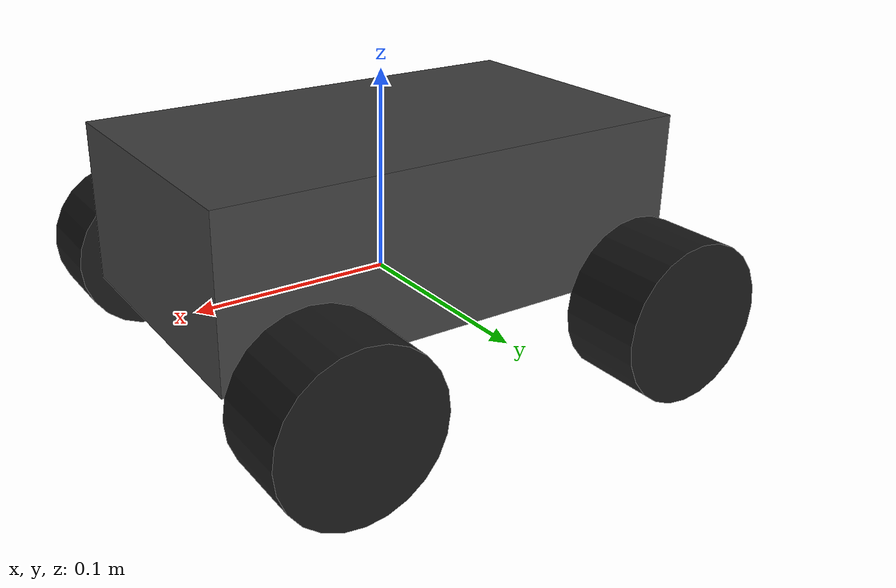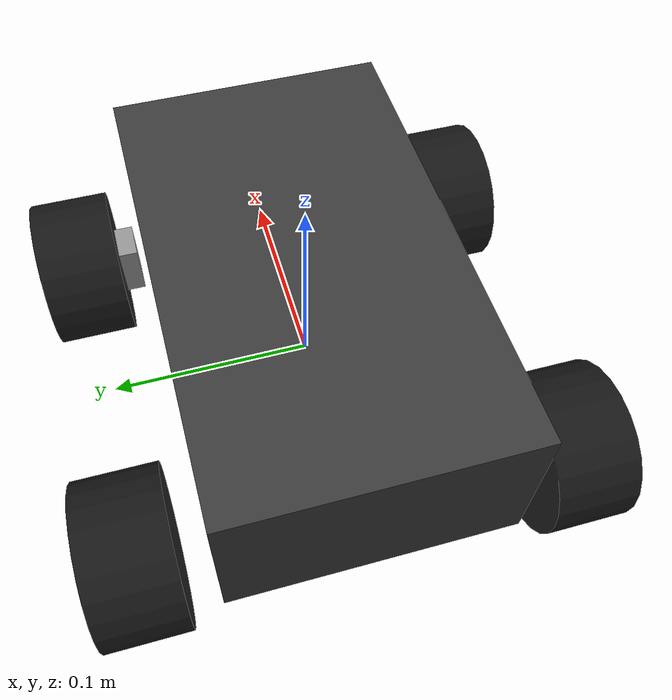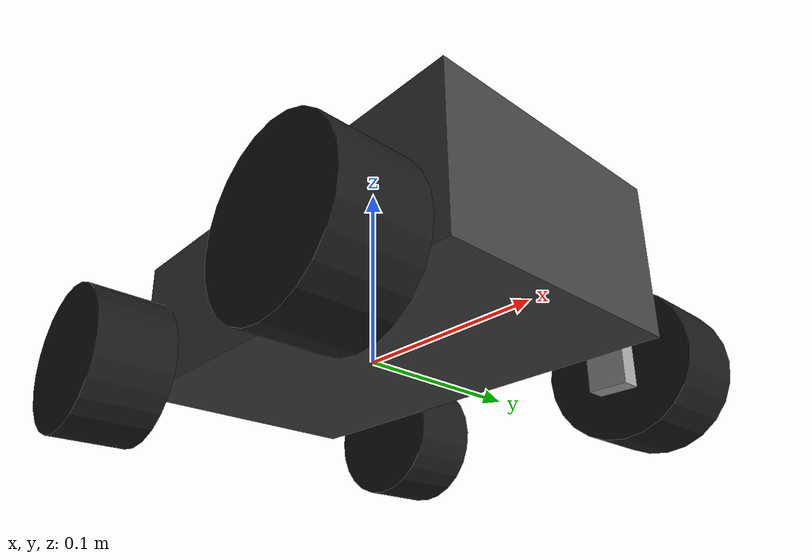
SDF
<sdf version='1.11'>
  <model name='hbx16889_rover'>
    <link name='base_link'>
      <inertial>
        <pose>0 0 0.035934664246823962 0 0 0</pose>
        <mass>0.55100000000000005</mass>
        <inertia>
          <ixx>0.0013072936479128861</ixx>
          <ixy>0</ixy>
          <ixz>0</ixz>
          <iyy>0.0031372936479128859</iyy>
          <iyz>0</iyz>
          <izz>0.003741</izz>
        </inertia>
      </inertial>
      <collision name='base_link_fixed_joint_lump__chassis_collision'>
        <pose>0 0 0.035999999999999997 0 0 0</pose>
        <geometry>
          <box>
            <size>0.23999999999999999 0.14000000000000001 0.080000000000000002</size>
          </box>
        </geometry>
        <surface>
          <contact>
            <ode/>
          </contact>
          <friction>
            <ode>
              <mu>0.10000000000000001</mu>
              <mu2>0.10000000000000001</mu2>
            </ode>
          </friction>
        </surface>
      </collision>
      <visual name='base_link_visual'>
        <pose>0 0 0 0 0 0</pose>
        <geometry>
          <box>
            <size>0.001 0.001 0.001</size>
          </box>
        </geometry>
      </visual>
      <visual name='base_link_fixed_joint_lump__chassis_visual_1'>
        <pose>0 0 0.035999999999999997 0 0 0</pose>
        <geometry>
          <box>
            <size>0.23999999999999999 0.14000000000000001 0.080000000000000002</size>
          </box>
        </geometry>
        <material>
          <diffuse>0.25 0.25 0.25 1</diffuse>
          <ambient>0.25 0.25 0.25 1</ambient>
        </material>
      </visual>

      <sensor name="air_pressure_sensor" type="air_pressure">
        <always_on>1</always_on>
        <update_rate>50</update_rate>
        <air_pressure>
          <pressure>
            <noise type="gaussian">
              <mean>0</mean>
              <stddev>3</stddev>
            </noise>
          </pressure>
        </air_pressure>
      </sensor>
      <sensor name="magnetometer_sensor" type="magnetometer">
        <always_on>1</always_on>
        <update_rate>100</update_rate>
        <magnetometer>
          <x><noise type="gaussian"><stddev>0.0001</stddev></noise></x>
          <y><noise type="gaussian"><stddev>0.0001</stddev></noise></y>
          <z><noise type="gaussian"><stddev>0.0001</stddev></noise></z>
        </magnetometer>
      </sensor>
      <sensor name="imu_sensor" type="imu">
        <always_on>1</always_on>
        <update_rate>250</update_rate>
        <imu>
          <angular_velocity>
            <x><noise type="gaussian"><mean>0.0</mean><stddev>0.0008726646</stddev></noise></x>
            <y><noise type="gaussian"><mean>0.0</mean><stddev>0.0008726646</stddev></noise></y>
            <z><noise type="gaussian"><mean>0.0</mean><stddev>0.0008726646</stddev></noise></z>
          </angular_velocity>
          <linear_acceleration>
            <x><noise type="gaussian"><mean>0.0</mean><stddev>0.00637</stddev></noise></x>
            <y><noise type="gaussian"><mean>0.0</mean><stddev>0.00637</stddev></noise></y>
            <z><noise type="gaussian"><mean>0.0</mean><stddev>0.00686</stddev></noise></z>
          </linear_acceleration>
        </imu>
      </sensor>
      <sensor name="navsat_sensor" type="navsat">
        <always_on>1</always_on>
        <update_rate>30</update_rate>
      </sensor>
    </link>
    <joint name='front_left_susp_joint' type='prismatic'>
      <pose relative_to='base_link'>0.087499999999999994 0.085000000000000006 -0.0040000000000000044 0 0 0</pose>
      <parent>base_link</parent>
      <child>front_left_susp_link</child>
      <axis>
        <xyz>0 0 1</xyz>
        <limit>
          <lower>-0.01</lower>
          <upper>0.01</upper>
          <effort>100</effort>
          <velocity>0.5</velocity>
        </limit>
        <dynamics>
          <damping>50</damping>
          <friction>0</friction>
          <spring_reference>0</spring_reference>
          <spring_stiffness>800</spring_stiffness>
        </dynamics>
      </axis>
      <physics>
        <ode>
          <implicit_spring_damper>true</implicit_spring_damper>
          <cfm_damping>true</cfm_damping>
          <limit>
            <cfm>0</cfm>
            <erp>0.20000000000000001</erp>
          </limit>
        </ode>
      </physics>
    </joint>
    <link name='front_left_susp_link'>
      <pose relative_to='front_left_susp_joint'>0 0 0 0 0 0</pose>
      <inertial>
        <pose>0 0 0 0 0 0</pose>
        <mass>0.01</mass>
        <inertia>
          <ixx>9.9999999999999995e-07</ixx>
          <ixy>0</ixy>
          <ixz>0</ixz>
          <iyy>9.9999999999999995e-07</iyy>
          <iyz>0</iyz>
          <izz>9.9999999999999995e-07</izz>
        </inertia>
      </inertial>
    </link>
    <joint name='front_left_steer_joint' type='revolute'>
      <pose relative_to='front_left_susp_link'>0 0 0 0 0 0</pose>
      <parent>front_left_susp_link</parent>
      <child>front_left_steer_link</child>
      <axis>
        <xyz>0 0 1</xyz>
        <limit>
          <lower>-0.52400000000000002</lower>
          <upper>0.52400000000000002</upper>
          <effort>10</effort>
          <velocity>2</velocity>
        </limit>
        <dynamics>
          <damping>1</damping>
          <friction>0.10000000000000001</friction>
          <spring_reference>0</spring_reference>
          <spring_stiffness>0</spring_stiffness>
        </dynamics>
      </axis>
    </joint>
    <link name='front_left_steer_link'>
      <pose relative_to='front_left_steer_joint'>0 0 0 0 0 0</pose>
      <inertial>
        <pose>0 0 0 0 0 0</pose>
        <mass>0.014999999999999999</mass>
        <inertia>
          <ixx>9.9999999999999995e-07</ixx>
          <ixy>0</ixy>
          <ixz>0</ixz>
          <iyy>9.9999999999999995e-07</iyy>
          <iyz>0</iyz>
          <izz>9.9999999999999995e-07</izz>
        </inertia>
      </inertial>
      <visual name='front_left_steer_link_visual'>
        <pose>0 0 0 0 0 0</pose>
        <geometry>
          <box>
            <size>0.02 0.02 0.029999999999999999</size>
          </box>
        </geometry>
        <material>
          <diffuse>0.625 0.625 0.625 1</diffuse>
          <ambient>0.625 0.625 0.625 1</ambient>
        </material>
      </visual>
    </link>
    <joint name='front_left_wheel_joint' type='revolute'>
      <pose relative_to='front_left_steer_link'>0 0.020500000000000001 0 0 0 0</pose>
      <parent>front_left_steer_link</parent>
      <child>front_left_wheel</child>
      <axis>
        <xyz>0 1 0</xyz>
        <limit>
          <lower>-inf</lower>
          <upper>inf</upper>
        </limit>
        <dynamics>
          <damping>0.01</damping>
          <friction>0.050000000000000003</friction>
          <spring_reference>0</spring_reference>
          <spring_stiffness>0</spring_stiffness>
        </dynamics>
      </axis>
    </joint>
    <link name='front_left_wheel'>
      <pose relative_to='front_left_wheel_joint'>0 0 0 0 0 0</pose>
      <inertial>
        <pose>0 0 0 0 0 0</pose>
        <mass>0.059999999999999998</mass>
        <inertia>
          <ixx>3.1199999999999999e-05</ixx>
          <ixy>0</ixy>
          <ixz>0</ixz>
          <iyy>3.1199999999999999e-05</iyy>
          <iyz>0</iyz>
          <izz>4.5599999999999997e-05</izz>
        </inertia>
      </inertial>
      <collision name='front_left_wheel_collision'>
        <pose>0 0 0 1.5708 0 0</pose>
        <geometry>
          <cylinder>
            <length>0.041000000000000002</length>
            <radius>0.039</radius>
          </cylinder>
        </geometry>
        <surface>
          <contact>
            <ode>
              <kp>1000000</kp>
              <kd>100</kd>
              <min_depth>0.001</min_depth>
            </ode>
          </contact>
          <friction>
            <ode>
              <mu>1.5</mu>
              <mu2>1.2</mu2>
            </ode>
          </friction>
        </surface>
      </collision>
      <visual name='front_left_wheel_visual'>
        <pose>0 0 0 1.5708 0 0</pose>
        <geometry>
          <cylinder>
            <length>0.041000000000000002</length>
            <radius>0.039</radius>
          </cylinder>
        </geometry>
        <material>
          <diffuse>0.099999994 0.099999994 0.099999994 1</diffuse>
          <ambient>0.099999994 0.099999994 0.099999994 1</ambient>
        </material>
      </visual>
    </link>
    <joint name='front_right_susp_joint' type='prismatic'>
      <pose relative_to='base_link'>0.087499999999999994 -0.085000000000000006 -0.0040000000000000044 0 0 0</pose>
      <parent>base_link</parent>
      <child>front_right_susp_link</child>
      <axis>
        <xyz>0 0 1</xyz>
        <limit>
          <lower>-0.01</lower>
          <upper>0.01</upper>
          <effort>100</effort>
          <velocity>0.5</velocity>
        </limit>
        <dynamics>
          <damping>50</damping>
          <friction>0</friction>
          <spring_reference>0</spring_reference>
          <spring_stiffness>800</spring_stiffness>
        </dynamics>
      </axis>
      <physics>
        <ode>
          <implicit_spring_damper>true</implicit_spring_damper>
          <cfm_damping>true</cfm_damping>
          <limit>
            <cfm>0</cfm>
            <erp>0.20000000000000001</erp>
          </limit>
        </ode>
      </physics>
    </joint>
    <link name='front_right_susp_link'>
      <pose relative_to='front_right_susp_joint'>0 0 0 0 0 0</pose>
      <inertial>
        <pose>0 0 0 0 0 0</pose>
        <mass>0.01</mass>
        <inertia>
          <ixx>9.9999999999999995e-07</ixx>
          <ixy>0</ixy>
          <ixz>0</ixz>
          <iyy>9.9999999999999995e-07</iyy>
          <iyz>0</iyz>
          <izz>9.9999999999999995e-07</izz>
        </inertia>
      </inertial>
    </link>
    <joint name='front_right_steer_joint' type='revolute'>
      <pose relative_to='front_right_susp_link'>0 0 0 0 0 0</pose>
      <parent>front_right_susp_link</parent>
      <child>front_right_steer_link</child>
      <axis>
        <xyz>0 0 1</xyz>
        <limit>
          <lower>-0.52400000000000002</lower>
          <upper>0.52400000000000002</upper>
          <effort>10</effort>
          <velocity>2</velocity>
        </limit>
        <dynamics>
          <damping>1</damping>
          <friction>0.10000000000000001</friction>
          <spring_reference>0</spring_reference>
          <spring_stiffness>0</spring_stiffness>
        </dynamics>
      </axis>
    </joint>
    <link name='front_right_steer_link'>
      <pose relative_to='front_right_steer_joint'>0 0 0 0 0 0</pose>
      <inertial>
        <pose>0 0 0 0 0 0</pose>
        <mass>0.014999999999999999</mass>
        <inertia>
          <ixx>9.9999999999999995e-07</ixx>
          <ixy>0</ixy>
          <ixz>0</ixz>
          <iyy>9.9999999999999995e-07</iyy>
          <iyz>0</iyz>
          <izz>9.9999999999999995e-07</izz>
        </inertia>
      </inertial>
      <visual name='front_right_steer_link_visual'>
        <pose>0 0 0 0 0 0</pose>
        <geometry>
          <box>
            <size>0.02 0.02 0.029999999999999999</size>
          </box>
        </geometry>
        <material>
          <diffuse>0.625 0.625 0.625 1</diffuse>
          <ambient>0.625 0.625 0.625 1</ambient>
        </material>
      </visual>
    </link>
    <joint name='front_right_wheel_joint' type='revolute'>
      <pose relative_to='front_right_steer_link'>0 -0.020500000000000001 0 0 0 0</pose>
      <parent>front_right_steer_link</parent>
      <child>front_right_wheel</child>
      <axis>
        <xyz>0 1 0</xyz>
        <limit>
          <lower>-inf</lower>
          <upper>inf</upper>
        </limit>
        <dynamics>
          <damping>0.01</damping>
          <friction>0.050000000000000003</friction>
          <spring_reference>0</spring_reference>
          <spring_stiffness>0</spring_stiffness>
        </dynamics>
      </axis>
    </joint>
    <link name='front_right_wheel'>
      <pose relative_to='front_right_wheel_joint'>0 0 0 0 0 0</pose>
      <inertial>
        <pose>0 0 0 0 0 0</pose>
        <mass>0.059999999999999998</mass>
        <inertia>
          <ixx>3.1199999999999999e-05</ixx>
          <ixy>0</ixy>
          <ixz>0</ixz>
          <iyy>3.1199999999999999e-05</iyy>
          <iyz>0</iyz>
          <izz>4.5599999999999997e-05</izz>
        </inertia>
      </inertial>
      <collision name='front_right_wheel_collision'>
        <pose>0 0 0 1.5708 0 0</pose>
        <geometry>
          <cylinder>
            <length>0.041000000000000002</length>
            <radius>0.039</radius>
          </cylinder>
        </geometry>
        <surface>
          <contact>
            <ode>
              <kp>1000000</kp>
              <kd>100</kd>
              <min_depth>0.001</min_depth>
            </ode>
          </contact>
          <friction>
            <ode>
              <mu>1.5</mu>
              <mu2>1.2</mu2>
            </ode>
          </friction>
        </surface>
      </collision>
      <visual name='front_right_wheel_visual'>
        <pose>0 0 0 1.5708 0 0</pose>
        <geometry>
          <cylinder>
            <length>0.041000000000000002</length>
            <radius>0.039</radius>
          </cylinder>
        </geometry>
        <material>
          <diffuse>0.099999994 0.099999994 0.099999994 1</diffuse>
          <ambient>0.099999994 0.099999994 0.099999994 1</ambient>
        </material>
      </visual>
    </link>
    <joint name='rear_left_susp_joint' type='prismatic'>
      <pose relative_to='base_link'>-0.087499999999999994 0.085000000000000006 -0.0040000000000000044 0 0 0</pose>
      <parent>base_link</parent>
      <child>rear_left_susp_link</child>
      <axis>
        <xyz>0 0 1</xyz>
        <limit>
          <lower>-0.01</lower>
          <upper>0.01</upper>
          <effort>100</effort>
          <velocity>0.5</velocity>
        </limit>
        <dynamics>
          <damping>50</damping>
          <friction>0</friction>
          <spring_reference>0</spring_reference>
          <spring_stiffness>800</spring_stiffness>
        </dynamics>
      </axis>
      <physics>
        <ode>
          <implicit_spring_damper>true</implicit_spring_damper>
          <cfm_damping>true</cfm_damping>
          <limit>
            <cfm>0</cfm>
            <erp>0.20000000000000001</erp>
          </limit>
        </ode>
      </physics>
    </joint>
    <link name='rear_left_susp_link'>
      <pose relative_to='rear_left_susp_joint'>0 0 0 0 0 0</pose>
      <inertial>
        <pose>0 0 0 0 0 0</pose>
        <mass>0.01</mass>
        <inertia>
          <ixx>9.9999999999999995e-07</ixx>
          <ixy>0</ixy>
          <ixz>0</ixz>
          <iyy>9.9999999999999995e-07</iyy>
          <iyz>0</iyz>
          <izz>9.9999999999999995e-07</izz>
        </inertia>
      </inertial>
    </link>
    <joint name='rear_left_wheel_joint' type='revolute'>
      <pose relative_to='rear_left_susp_link'>0 0.020500000000000001 0 0 0 0</pose>
      <parent>rear_left_susp_link</parent>
      <child>rear_left_wheel</child>
      <axis>
        <xyz>0 1 0</xyz>
        <limit>
          <lower>-inf</lower>
          <upper>inf</upper>
        </limit>
        <dynamics>
          <damping>0.01</damping>
          <friction>0.050000000000000003</friction>
          <spring_reference>0</spring_reference>
          <spring_stiffness>0</spring_stiffness>
        </dynamics>
      </axis>
    </joint>
    <link name='rear_left_wheel'>
      <pose relative_to='rear_left_wheel_joint'>0 0 0 0 0 0</pose>
      <inertial>
        <pose>0 0 0 0 0 0</pose>
        <mass>0.059999999999999998</mass>
        <inertia>
          <ixx>3.1199999999999999e-05</ixx>
          <ixy>0</ixy>
          <ixz>0</ixz>
          <iyy>3.1199999999999999e-05</iyy>
          <iyz>0</iyz>
          <izz>4.5599999999999997e-05</izz>
        </inertia>
      </inertial>
      <collision name='rear_left_wheel_collision'>
        <pose>0 0 0 1.5708 0 0</pose>
        <geometry>
          <cylinder>
            <length>0.041000000000000002</length>
            <radius>0.039</radius>
          </cylinder>
        </geometry>
        <surface>
          <contact>
            <ode>
              <kp>1000000</kp>
              <kd>100</kd>
              <min_depth>0.001</min_depth>
            </ode>
          </contact>
          <friction>
            <ode>
              <mu>1.5</mu>
              <mu2>1.2</mu2>
            </ode>
          </friction>
        </surface>
      </collision>
      <visual name='rear_left_wheel_visual'>
        <pose>0 0 0 1.5708 0 0</pose>
        <geometry>
          <cylinder>
            <length>0.041000000000000002</length>
            <radius>0.039</radius>
          </cylinder>
        </geometry>
        <material>
          <diffuse>0.099999994 0.099999994 0.099999994 1</diffuse>
          <ambient>0.099999994 0.099999994 0.099999994 1</ambient>
        </material>
      </visual>
    </link>
    <joint name='rear_right_susp_joint' type='prismatic'>
      <pose relative_to='base_link'>-0.087499999999999994 -0.085000000000000006 -0.0040000000000000044 0 0 0</pose>
      <parent>base_link</parent>
      <child>rear_right_susp_link</child>
      <axis>
        <xyz>0 0 1</xyz>
        <limit>
          <lower>-0.01</lower>
          <upper>0.01</upper>
          <effort>100</effort>
          <velocity>0.5</velocity>
        </limit>
        <dynamics>
          <damping>50</damping>
          <friction>0</friction>
          <spring_reference>0</spring_reference>
          <spring_stiffness>800</spring_stiffness>
        </dynamics>
      </axis>
      <physics>
        <ode>
          <implicit_spring_damper>true</implicit_spring_damper>
          <cfm_damping>true</cfm_damping>
          <limit>
            <cfm>0</cfm>
            <erp>0.20000000000000001</erp>
          </limit>
        </ode>
      </physics>
    </joint>
    <link name='rear_right_susp_link'>
      <pose relative_to='rear_right_susp_joint'>0 0 0 0 0 0</pose>
      <inertial>
        <pose>0 0 0 0 0 0</pose>
        <mass>0.01</mass>
        <inertia>
          <ixx>9.9999999999999995e-07</ixx>
          <ixy>0</ixy>
          <ixz>0</ixz>
          <iyy>9.9999999999999995e-07</iyy>
          <iyz>0</iyz>
          <izz>9.9999999999999995e-07</izz>
        </inertia>
      </inertial>
    </link>
    <joint name='rear_right_wheel_joint' type='revolute'>
      <pose relative_to='rear_right_susp_link'>0 -0.020500000000000001 0 0 0 0</pose>
      <parent>rear_right_susp_link</parent>
      <child>rear_right_wheel</child>
      <axis>
        <xyz>0 1 0</xyz>
        <limit>
          <lower>-inf</lower>
          <upper>inf</upper>
        </limit>
        <dynamics>
          <damping>0.01</damping>
          <friction>0.050000000000000003</friction>
          <spring_reference>0</spring_reference>
          <spring_stiffness>0</spring_stiffness>
        </dynamics>
      </axis>
    </joint>
    <link name='rear_right_wheel'>
      <pose relative_to='rear_right_wheel_joint'>0 0 0 0 0 0</pose>
      <inertial>
        <pose>0 0 0 0 0 0</pose>
        <mass>0.059999999999999998</mass>
        <inertia>
          <ixx>3.1199999999999999e-05</ixx>
          <ixy>0</ixy>
          <ixz>0</ixz>
          <iyy>3.1199999999999999e-05</iyy>
          <iyz>0</iyz>
          <izz>4.5599999999999997e-05</izz>
        </inertia>
      </inertial>
      <collision name='rear_right_wheel_collision'>
        <pose>0 0 0 1.5708 0 0</pose>
        <geometry>
          <cylinder>
            <length>0.041000000000000002</length>
            <radius>0.039</radius>
          </cylinder>
        </geometry>
        <surface>
          <contact>
            <ode>
              <kp>1000000</kp>
              <kd>100</kd>
              <min_depth>0.001</min_depth>
            </ode>
          </contact>
          <friction>
            <ode>
              <mu>1.5</mu>
              <mu2>1.2</mu2>
            </ode>
          </friction>
        </surface>
      </collision>
      <visual name='rear_right_wheel_visual'>
        <pose>0 0 0 1.5708 0 0</pose>
        <geometry>
          <cylinder>
            <length>0.041000000000000002</length>
            <radius>0.039</radius>
          </cylinder>
        </geometry>
        <material>
          <diffuse>0.099999994 0.099999994 0.099999994 1</diffuse>
          <ambient>0.099999994 0.099999994 0.099999994 1</ambient>
        </material>
      </visual>
    </link>

    <plugin filename="gz-sim-joint-controller-system" name="gz::sim::systems::JointController">
      <joint_name>rear_left_wheel_joint</joint_name>
      <sub_topic>command/motor_speed</sub_topic>
      <control_type>velocity</control_type>
      <use_actuator_msg>true</use_actuator_msg>
      <actuator_number>0</actuator_number>
    </plugin>

    <plugin filename="gz-sim-joint-controller-system" name="gz::sim::systems::JointController">
      <joint_name>rear_right_wheel_joint</joint_name>
      <sub_topic>command/motor_speed</sub_topic>
      <control_type>velocity</control_type>
      <use_actuator_msg>true</use_actuator_msg>
      <actuator_number>0</actuator_number>
    </plugin>

    <plugin filename="gz-sim-joint-controller-system" name="gz::sim::systems::JointController">
      <joint_name>front_left_wheel_joint</joint_name>
      <sub_topic>command/motor_speed</sub_topic>
      <control_type>velocity</control_type>
      <use_actuator_msg>true</use_actuator_msg>
      <actuator_number>0</actuator_number>
    </plugin>

    <plugin filename="gz-sim-joint-controller-system" name="gz::sim::systems::JointController">
      <joint_name>front_right_wheel_joint</joint_name>
      <sub_topic>command/motor_speed</sub_topic>
      <control_type>velocity</control_type>
      <use_actuator_msg>true</use_actuator_msg>
      <actuator_number>0</actuator_number>
    </plugin>

    <plugin filename="gz-sim-joint-position-controller-system" name="gz::sim::systems::JointPositionController">
      <joint_name>front_left_steer_joint</joint_name>
      <sub_topic>servo_0</sub_topic>
      <p_gain>1</p_gain>
      <i_gain>1</i_gain>
      <d_gain>0.5</d_gain>
    </plugin>

    <plugin filename="gz-sim-joint-position-controller-system" name="gz::sim::systems::JointPositionController">
      <joint_name>front_right_steer_joint</joint_name>
      <sub_topic>servo_0</sub_topic>
      <p_gain>1</p_gain>
      <i_gain>1</i_gain>
      <d_gain>0.5</d_gain>
    </plugin>

    <plugin filename="gz-sim-joint-state-publisher-system" name="gz::sim::systems::JointStatePublisher">
      <joint_name>rear_left_wheel_joint</joint_name>
      <joint_name>rear_right_wheel_joint</joint_name>
      <joint_name>front_left_wheel_joint</joint_name>
      <joint_name>front_right_wheel_joint</joint_name>
      <joint_name>front_left_steer_joint</joint_name>
      <joint_name>front_right_steer_joint</joint_name>
    </plugin>
  </model>
</sdf>
